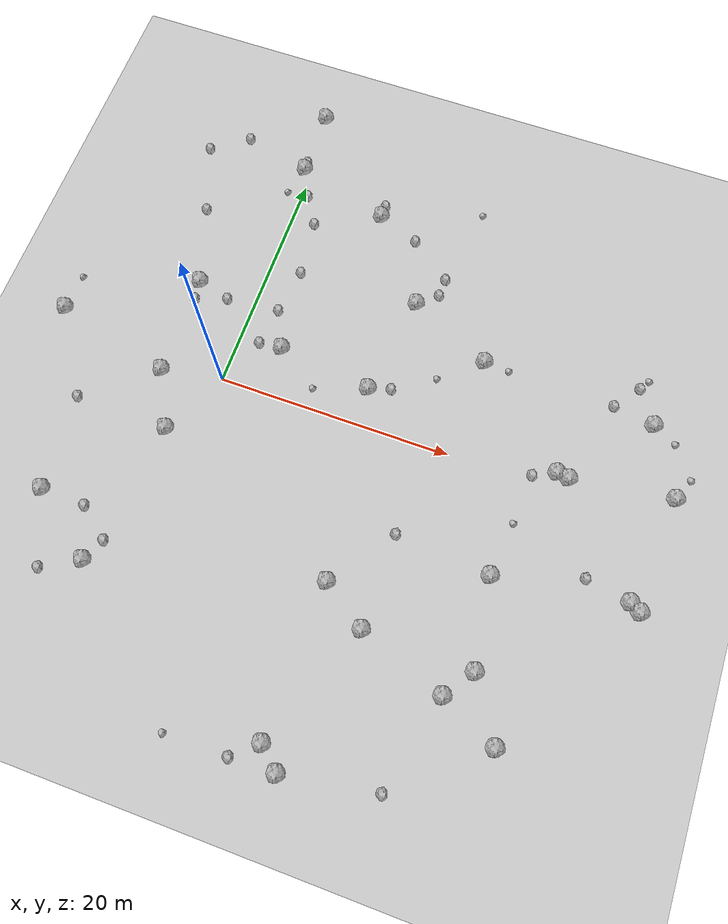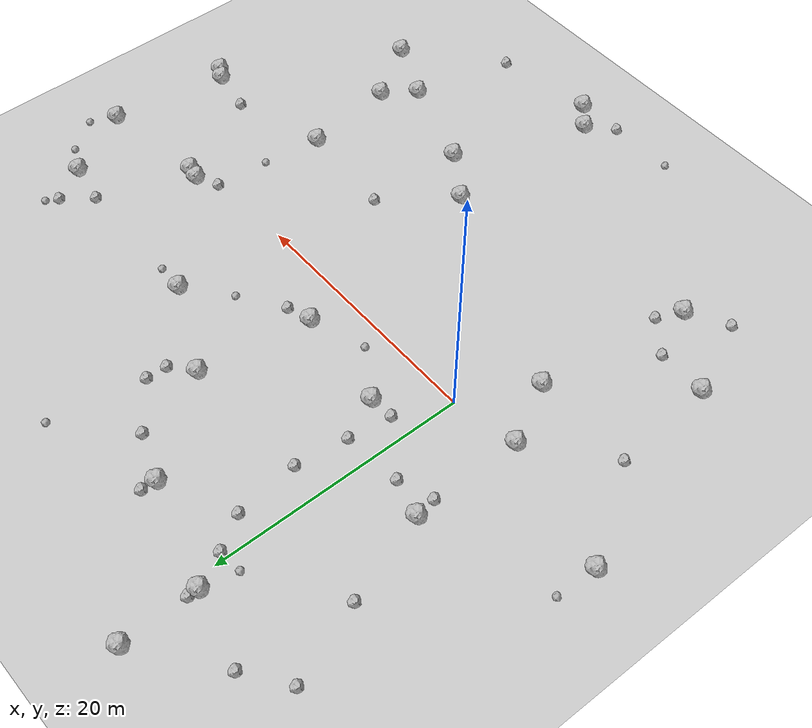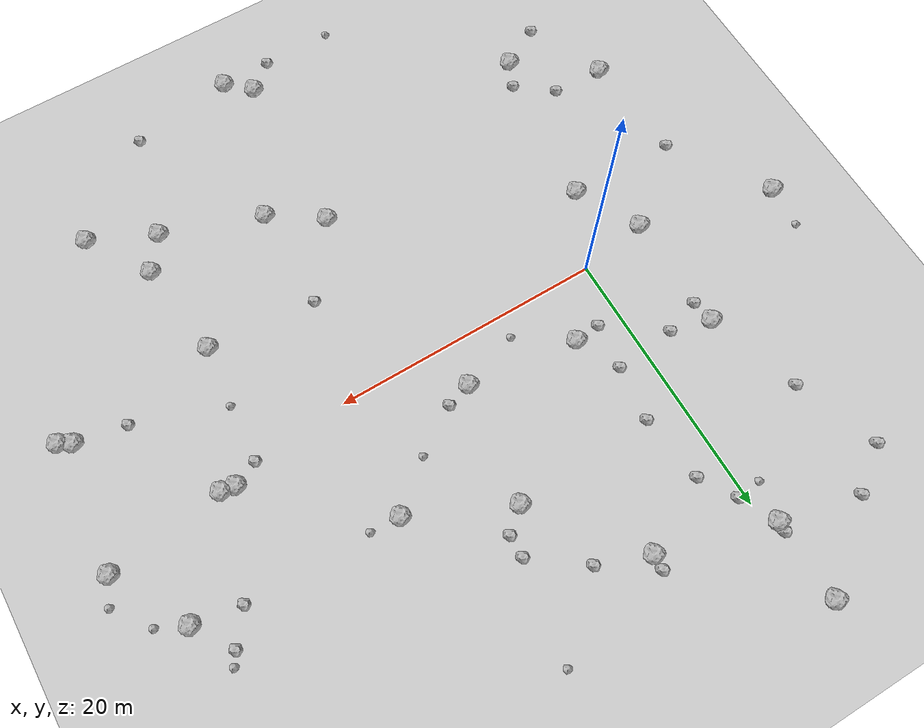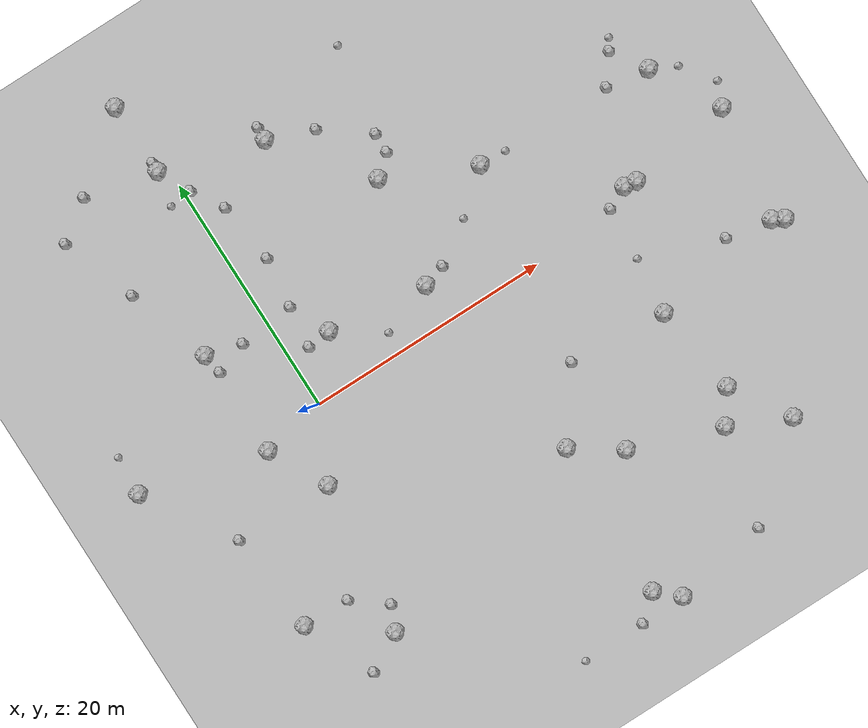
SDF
<sdf version="1.6">
 <world name="default">
  <include><uri>model://custom_ground</uri></include>
  <include><uri>model://sun</uri></include>
  <model name="rock1_0_0">
   <include><uri>model://rock1</uri><pose>38.499279335923404 2.4962677503804684 0.5 0 0 0</pose></include>
  </model>
  <model name="rock1_0_1">
   <include><uri>model://rock1</uri><pose>-5.152928977095758 -0.9104983661582082 0.5 0 0 0</pose></include>
  </model>
  <model name="rock1_0_2">
   <include><uri>model://rock1</uri><pose>37.945662890087135 -7.302142973694959 0.5 0 0 0</pose></include>
  </model>
  <model name="rock1_0_3">
   <include><uri>model://rock1</uri><pose>28.872317144644384 1.4413041734034984 0.5 0 0 0</pose></include>
  </model>
  <model name="rock1_0_4">
   <include><uri>model://rock1</uri><pose>13.255718860499968 12.153403815101896 0.5 0 0 0</pose></include>
  </model>
  <model name="rock1_0_5">
   <include><uri>model://rock1</uri><pose>37.04528922822963 -6.801801094313049 0.5 0 0 0</pose></include>
  </model>
  <model name="rock1_0_6">
   <include><uri>model://rock1</uri><pose>-0.7353882486554895 21.793082053032585 0.5 0 0 0</pose></include>
  </model>
  <model name="rock1_0_7">
   <include><uri>model://rock1</uri><pose>3.7355522780256685 4.320777553161918 0.5 0 0 0</pose></include>
  </model>
  <model name="rock1_0_8">
   <include><uri>model://rock1</uri><pose>-4.442931170820753 -17.910991332107574 0.5 0 0 0</pose></include>
  </model>
  <model name="rock1_0_9">
   <include><uri>model://rock1</uri><pose>-0.8283816483624058 27.695385124310214 0.5 0 0 0</pose></include>
  </model>
  <model name="rock1_0_10">
   <include><uri>model://rock1</uri><pose>30.244649839563095 -20.503867427040976 0.5 0 0 0</pose></include>
  </model>
  <model name="rock1_0_11">
   <include><uri>model://rock1</uri><pose>27.220844848968284 -15.789167048249865 0.5 0 0 0</pose></include>
  </model>
  <model name="rock1_0_12">
   <include><uri>model://rock1</uri><pose>25.45186391371555 -18.274446917702353 0.5 0 0 0</pose></include>
  </model>
  <model name="rock1_0_13">
   <include><uri>model://rock1</uri><pose>20.462280059421616 8.828627315640574 0.5 0 0 0</pose></include>
  </model>
  <model name="rock1_0_14">
   <include><uri>model://rock1</uri><pose>11.926625334582937 3.2746584931311062 0.5 0 0 0</pose></include>
  </model>
  <model name="rock1_0_15">
   <include><uri>model://rock1</uri><pose>-10.066269611143353 -13.721339866017864 0.5 0 0 0</pose></include>
  </model>
  <model name="rock1_0_16">
   <include><uri>model://rock1</uri><pose>7.542467508907645 19.38392832837701 0.5 0 0 0</pose></include>
  </model>
  <model name="rock1_0_17">
   <include><uri>model://rock1</uri><pose>29.897797213910508 1.2843652691319605 0.5 0 0 0</pose></include>
  </model>
  <model name="rock1_0_18">
   <include><uri>model://rock1</uri><pose>26.19567070392096 -8.402248281986171 0.5 0 0 0</pose></include>
  </model>
  <model name="rock1_0_19">
   <include><uri>model://rock1</uri><pose>35.35345252947786 8.054114043723885 0.5 0 0 0</pose></include>
  </model>
  <model name="rock1_0_20">
   <include><uri>model://rock1</uri><pose>13.886486923757616 -25.92879957857226 0.5 0 0 0</pose></include>
  </model>
  <model name="rock1_0_21">
   <include><uri>model://rock1</uri><pose>-5.300407151325269 7.896970477874746 0.5 0 0 0</pose></include>
  </model>
  <model name="rock1_0_22">
   <include><uri>model://rock1</uri><pose>-15.34831475124063 1.6616403832092956 0.5 0 0 0</pose></include>
  </model>
  <model name="rock1_0_23">
   <include><uri>model://rock1</uri><pose>15.64841040327007 -27.530104111239563 0.5 0 0 0</pose></include>
  </model>
  <model name="rock1_0_24">
   <include><uri>model://rock1</uri><pose>18.07461416265477 -15.675990531605583 0.5 0 0 0</pose></include>
  </model>
  <model name="rock1_0_25">
   <include><uri>model://rock1</uri><pose>-2.70148578261065 -5.624107172394233 0.5 0 0 0</pose></include>
  </model>
  <model name="rock1_0_26">
   <include><uri>model://rock1</uri><pose>14.275333095724022 -13.102022111534165 0.5 0 0 0</pose></include>
  </model>
  <model name="rock2_0_0">
   <include><uri>model://rock2</uri><pose>27.02331365735428 0.5724271778307646 0.3 0 0 0</pose></include>
  </model>
  <model name="rock2_0_1">
   <include><uri>model://rock2</uri><pose>11.893887061078097 -27.662580433388936 0.3 0 0 0</pose></include>
  </model>
  <model name="rock2_0_2">
   <include><uri>model://rock2</uri><pose>-10.80923143893726 -5.494066823289703 0.3 0 0 0</pose></include>
  </model>
  <model name="rock2_0_3">
   <include><uri>model://rock2</uri><pose>-7.5603640945554105 -19.63111680444857 0.3 0 0 0</pose></include>
  </model>
  <model name="rock2_0_4">
   <include><uri>model://rock2</uri><pose>-3.6071327797772383 -15.940006337208075 0.3 0 0 0</pose></include>
  </model>
  <model name="rock2_0_5">
   <include><uri>model://rock2</uri><pose>1.7464187494099974 4.155256694556293 0.3 0 0 0</pose></include>
  </model>
  <model name="rock2_0_6">
   <include><uri>model://rock2</uri><pose>-5.100762623920662 6.208931861441805 0.3 0 0 0</pose></include>
  </model>
  <model name="rock2_0_7">
   <include><uri>model://rock2</uri><pose>23.393812078505775 -26.264020312862304 0.3 0 0 0</pose></include>
  </model>
  <model name="rock2_0_8">
   <include><uri>model://rock2</uri><pose>33.32857869919631 -6.130960711065864 0.3 0 0 0</pose></include>
  </model>
  <model name="rock2_0_9">
   <include><uri>model://rock2</uri><pose>14.881491976080056 13.578374644520046 0.3 0 0 0</pose></include>
  </model>
  <model name="rock2_0_10">
   <include><uri>model://rock2</uri><pose>2.0887625794577396 16.664092540929822 0.3 0 0 0</pose></include>
  </model>
  <model name="rock2_0_11">
   <include><uri>model://rock2</uri><pose>-6.671885726056681 23.21838671892563 0.3 0 0 0</pose></include>
  </model>
  <model name="rock2_0_12">
   <include><uri>model://rock2</uri><pose>2.175653901965731 7.55621944527325 0.3 0 0 0</pose></include>
  </model>
  <model name="rock2_0_13">
   <include><uri>model://rock2</uri><pose>-2.416189578667371 7.1222629391139805 0.3 0 0 0</pose></include>
  </model>
  <model name="rock2_0_14">
   <include><uri>model://rock2</uri><pose>-6.257122335890346 -13.871518116724015 0.3 0 0 0</pose></include>
  </model>
  <model name="rock2_0_15">
   <include><uri>model://rock2</uri><pose>11.23729765504941 18.002280006319793 0.3 0 0 0</pose></include>
  </model>
  <model name="rock2_0_16">
   <include><uri>model://rock2</uri><pose>31.832530857297805 8.634781763451606 0.3 0 0 0</pose></include>
  </model>
  <model name="rock2_0_17">
   <include><uri>model://rock2</uri><pose>14.926596627559412 15.227981306011287 0.3 0 0 0</pose></include>
  </model>
  <model name="rock2_0_18">
   <include><uri>model://rock2</uri><pose>-7.5967089939621 14.839910347183384 0.3 0 0 0</pose></include>
  </model>
  <model name="rock2_0_19">
   <include><uri>model://rock2</uri><pose>2.706769117059771 11.653223938660986 0.3 0 0 0</pose></include>
  </model>
  <model name="rock2_0_20">
   <include><uri>model://rock2</uri><pose>33.52656852426311 10.870476280083821 0.3 0 0 0</pose></include>
  </model>
  <model name="rock2_0_21">
   <include><uri>model://rock2</uri><pose>-0.760123575863048 22.582875693237078 0.3 0 0 0</pose></include>
  </model>
  <model name="rock2_0_22">
   <include><uri>model://rock2</uri><pose>18.14554257853076 -7.746170398458794 0.3 0 0 0</pose></include>
  </model>
  <model name="rock2_0_23">
   <include><uri>model://rock2</uri><pose>13.777270722726925 3.8587025737427965 0.3 0 0 0</pose></include>
  </model>
  <model name="rock2_0_24">
   <include><uri>model://rock2</uri><pose>7.5493060135132914 20.536534454075166 0.3 0 0 0</pose></include>
  </model>
  <model name="rock2_0_25">
   <include><uri>model://rock2</uri><pose>0.5287542916673651 19.20132245513718 0.3 0 0 0</pose></include>
  </model>
  <model name="rock2_0_26">
   <include><uri>model://rock2</uri><pose>-9.795584714374924 20.972117363285378 0.3 0 0 0</pose></include>
  </model>
  <model name="rock3_0_0">
   <include><uri>model://rock3</uri><pose>34.07706971149315 11.743978658743814 0.2 0 0 0</pose></include>
  </model>
  <model name="rock3_0_1">
   <include><uri>model://rock3</uri><pose>37.42982341449867 6.99981720781863 0.2 0 0 0</pose></include>
  </model>
  <model name="rock3_0_2">
   <include><uri>model://rock3</uri><pose>-15.241879477335763 4.857386670011039 0.2 0 0 0</pose></include>
  </model>
  <model name="rock3_0_3">
   <include><uri>model://rock3</uri><pose>22.64595713966164 8.688945796644106 0.2 0 0 0</pose></include>
  </model>
  <model name="rock3_0_4">
   <include><uri>model://rock3</uri><pose>-1.3730413784639204 18.987334607214834 0.2 0 0 0</pose></include>
  </model>
  <model name="rock3_0_5">
   <include><uri>model://rock3</uri><pose>16.139561903334688 22.512918189770858 0.2 0 0 0</pose></include>
  </model>
  <model name="rock3_0_6">
   <include><uri>model://rock3</uri><pose>17.10774962822554 6.020044090092171 0.2 0 0 0</pose></include>
  </model>
  <model name="rock3_0_7">
   <include><uri>model://rock3</uri><pose>26.72104152226286 -3.822288309577484 0.2 0 0 0</pose></include>
  </model>
  <model name="rock3_0_8">
   <include><uri>model://rock3</uri><pose>6.639740843753806 -27.776940577675106 0.2 0 0 0</pose></include>
  </model>
  <model name="rock3_0_9">
   <include><uri>model://rock3</uri><pose>7.50959654884451 1.719176949064753 0.2 0 0 0</pose></include>
  </model>
  <model name="rock3_0_10">
   <include><uri>model://rock3</uri><pose>39.350231329919225 4.402659557559836 0.2 0 0 0</pose></include>
  </model>
 </world>
</sdf>
